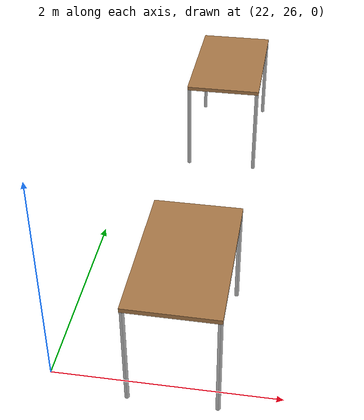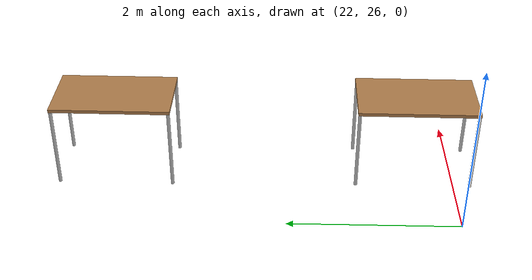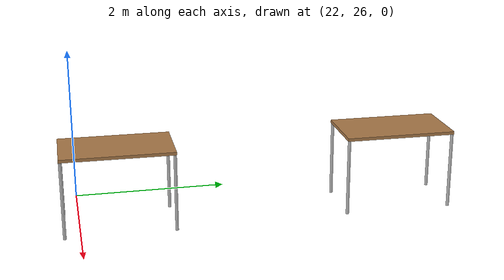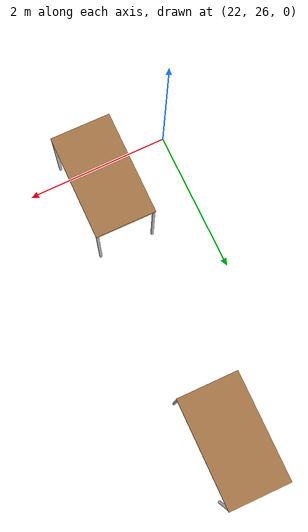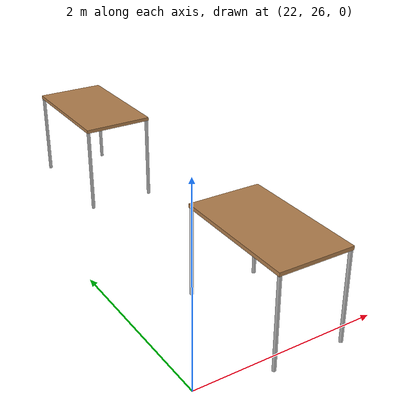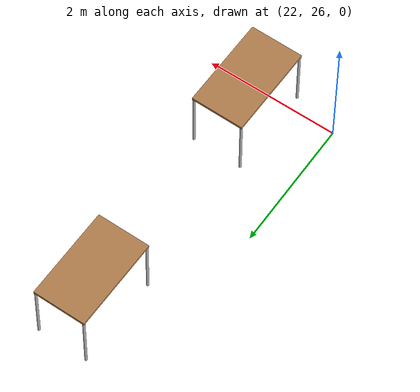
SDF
<sdf version="1.6">
 <world name="default">
  <model name="asphalt_plane">
   <static>1</static>
   <link name="link">
    <collision name="collision"><geometry><box><size>20 20 0.1</size></box></geometry></collision>
    <visual name="visual">
     <cast_shadows>0</cast_shadows>
     <geometry><box><size>20 20 0.1</size></box></geometry>
     <material>
      <script>
       <uri>model://asphalt_plane/materials/scripts</uri>
       <uri>model://asphalt_plane/materials/textures</uri>
       <name>vrc/asphalt</name>
      </script>
     </material>
    </visual>
   </link>
   <pose>70.7475 -31.5972 0 0 -0 0</pose>
  </model>
  <model name="table_3_clone_clone_clone_0">
   <static>0</static>
   <link name="link">
    <collision name="surface">
     <pose>0 0 1 0 -0 0</pose>
     <geometry><box><size>1.5 0.8 0.03</size></box></geometry>
     <surface><friction><ode><mu>0.6</mu><mu2>0.6</mu2></ode></friction></surface>
    </collision>
    <visual name="visual1">
     <pose>0 0 1 0 -0 0</pose>
     <geometry><box><size>1.4 0.8 0.04</size></box></geometry>
     <material>
      <script><uri>file://media/materials/scripts/gazebo.material</uri><name>Gazebo/Wood</name></script>
     </material>
    </visual>
    <collision name="front_left_leg">
     <pose>0.68 0.38 0.5 0 -0 0</pose>
     <geometry><cylinder><radius>0.02</radius><length>1</length></cylinder></geometry>
    </collision>
    <visual name="front_left_leg">
     <pose>0.68 0.38 0.5 0 -0 0</pose>
     <geometry><cylinder><radius>0.02</radius><length>1</length></cylinder></geometry>
     <material>
      <script>
       <uri>model://office_env/materials/scripts</uri>
       <uri>model://office_env/materials/textures</uri>
       <name>wall</name>
      </script>
     </material>
    </visual>
    <collision name="front_right_leg">
     <pose>0.68 -0.38 0.5 0 -0 0</pose>
     <geometry><cylinder><radius>0.02</radius><length>1</length></cylinder></geometry>
    </collision>
    <visual name="front_right_leg">
     <pose>0.68 -0.38 0.5 0 -0 0</pose>
     <geometry><cylinder><radius>0.02</radius><length>1</length></cylinder></geometry>
     <material>
      <script>
       <uri>model://office_env/materials/scripts</uri>
       <uri>model://office_env/materials/textures</uri>
       <name>wall</name>
      </script>
     </material>
    </visual>
    <collision name="back_right_leg">
     <pose>-0.68 -0.38 0.5 0 -0 0</pose>
     <geometry><cylinder><radius>0.02</radius><length>1</length></cylinder></geometry>
    </collision>
    <visual name="back_right_leg">
     <pose>-0.68 -0.38 0.5 0 -0 0</pose>
     <geometry><cylinder><radius>0.02</radius><length>1</length></cylinder></geometry>
     <material>
      <script>
       <uri>model://office_env/materials/scripts</uri>
       <uri>model://office_env/materials/textures</uri>
       <name>wall</name>
      </script>
     </material>
    </visual>
    <collision name="back_left_leg">
     <pose>-0.68 0.38 0.5 0 -0 0</pose>
     <geometry><cylinder><radius>0.02</radius><length>1</length></cylinder></geometry>
    </collision>
    <visual name="back_left_leg">
     <pose>-0.68 0.38 0.5 0 -0 0</pose>
     <geometry><cylinder><radius>0.02</radius><length>1</length></cylinder></geometry>
     <material>
      <script>
       <uri>model://office_env/materials/scripts</uri>
       <uri>model://office_env/materials/textures</uri>
       <name>wall</name>
      </script>
     </material>
    </visual>
    <inertial>
     <inertia><ixx>1</ixx><ixy>0</ixy><ixz>0</ixz><iyy>1</iyy><iyz>0</iyz><izz>1</izz></inertia>
     <mass>1</mass>
    </inertial>
   </link>
   <pose>23.1004 26.4884 0.034999 0 0 -1.58064</pose>
  </model>
  <model name="table_3_clone_clone_clone_1">
   <static>0</static>
   <link name="link">
    <collision name="surface">
     <pose>0 0 1 0 -0 0</pose>
     <geometry><box><size>1.5 0.8 0.03</size></box></geometry>
     <surface><friction><ode><mu>0.6</mu><mu2>0.6</mu2></ode></friction></surface>
    </collision>
    <visual name="visual1">
     <pose>0 0 1 0 -0 0</pose>
     <geometry><box><size>1.4 0.8 0.04</size></box></geometry>
     <material>
      <script><uri>file://media/materials/scripts/gazebo.material</uri><name>Gazebo/Wood</name></script>
     </material>
    </visual>
    <collision name="front_left_leg">
     <pose>0.68 0.38 0.5 0 -0 0</pose>
     <geometry><cylinder><radius>0.02</radius><length>1</length></cylinder></geometry>
    </collision>
    <visual name="front_left_leg">
     <pose>0.68 0.38 0.5 0 -0 0</pose>
     <geometry><cylinder><radius>0.02</radius><length>1</length></cylinder></geometry>
     <material>
      <script>
       <uri>model://office_env/materials/scripts</uri>
       <uri>model://office_env/materials/textures</uri>
       <name>wall</name>
      </script>
     </material>
    </visual>
    <collision name="front_right_leg">
     <pose>0.68 -0.38 0.5 0 -0 0</pose>
     <geometry><cylinder><radius>0.02</radius><length>1</length></cylinder></geometry>
    </collision>
    <visual name="front_right_leg">
     <pose>0.68 -0.38 0.5 0 -0 0</pose>
     <geometry><cylinder><radius>0.02</radius><length>1</length></cylinder></geometry>
     <material>
      <script>
       <uri>model://office_env/materials/scripts</uri>
       <uri>model://office_env/materials/textures</uri>
       <name>wall</name>
      </script>
     </material>
    </visual>
    <collision name="back_right_leg">
     <pose>-0.68 -0.38 0.5 0 -0 0</pose>
     <geometry><cylinder><radius>0.02</radius><length>1</length></cylinder></geometry>
    </collision>
    <visual name="back_right_leg">
     <pose>-0.68 -0.38 0.5 0 -0 0</pose>
     <geometry><cylinder><radius>0.02</radius><length>1</length></cylinder></geometry>
     <material>
      <script>
       <uri>model://office_env/materials/scripts</uri>
       <uri>model://office_env/materials/textures</uri>
       <name>wall</name>
      </script>
     </material>
    </visual>
    <collision name="back_left_leg">
     <pose>-0.68 0.38 0.5 0 -0 0</pose>
     <geometry><cylinder><radius>0.02</radius><length>1</length></cylinder></geometry>
    </collision>
    <visual name="back_left_leg">
     <pose>-0.68 0.38 0.5 0 -0 0</pose>
     <geometry><cylinder><radius>0.02</radius><length>1</length></cylinder></geometry>
     <material>
      <script>
       <uri>model://office_env/materials/scripts</uri>
       <uri>model://office_env/materials/textures</uri>
       <name>wall</name>
      </script>
     </material>
    </visual>
    <inertial>
     <inertia><ixx>1</ixx><ixy>0</ixy><ixz>0</ixz><iyy>1</iyy><iyz>0</iyz><izz>1</izz></inertia>
     <mass>1</mass>
    </inertial>
   </link>
   <pose>23.0792 30.0448 0.034999 0 0 -1.58064</pose>
  </model>
 </world>
</sdf>
